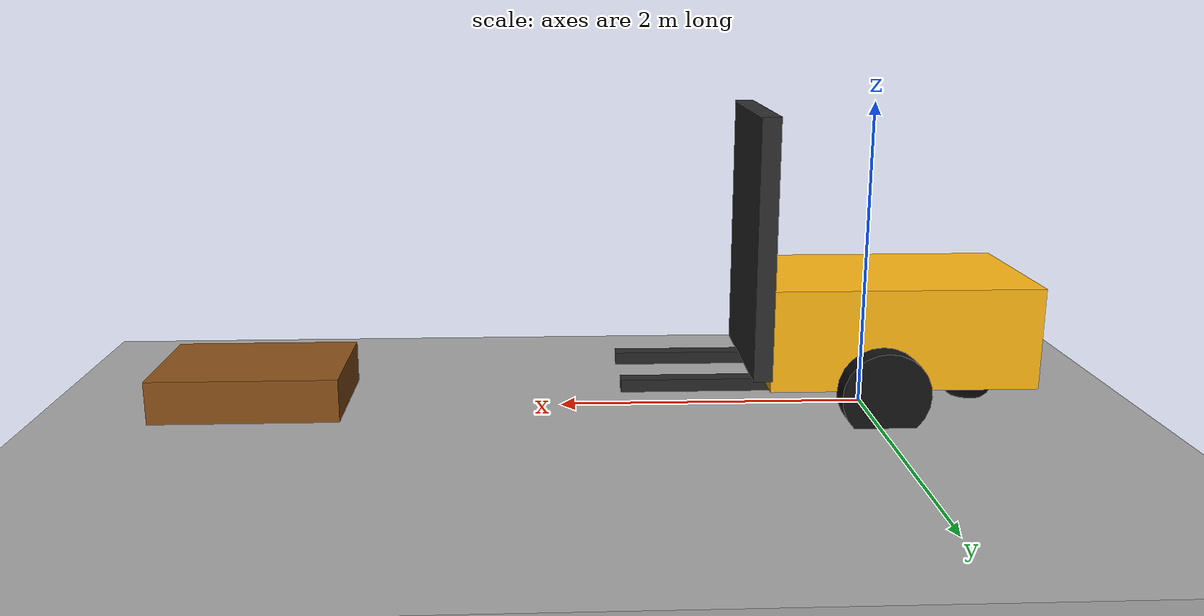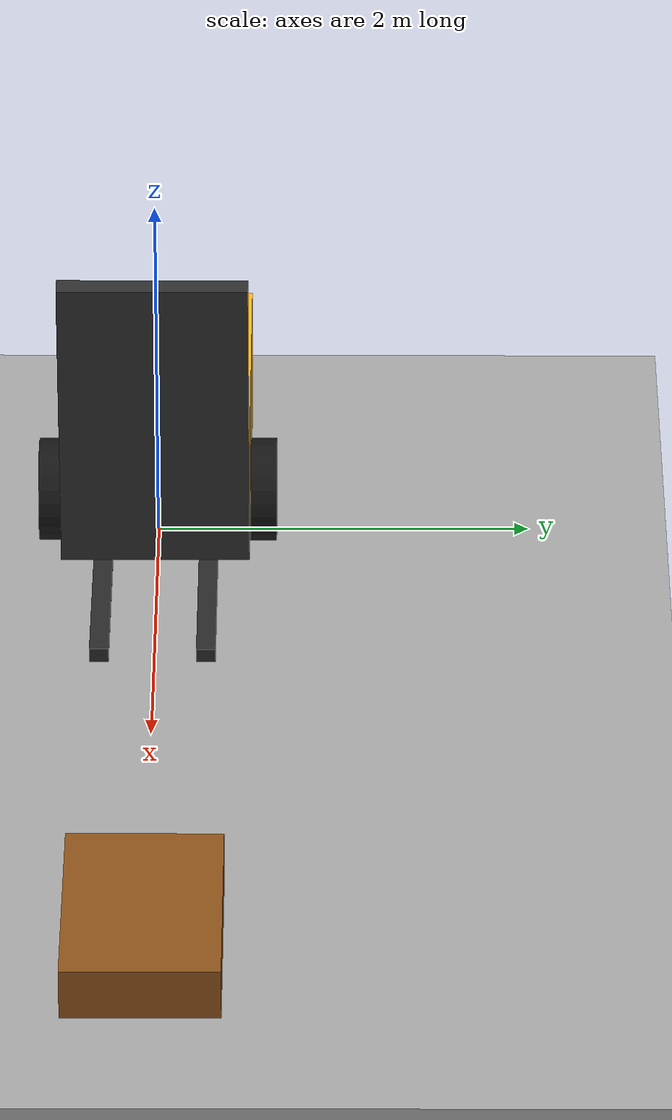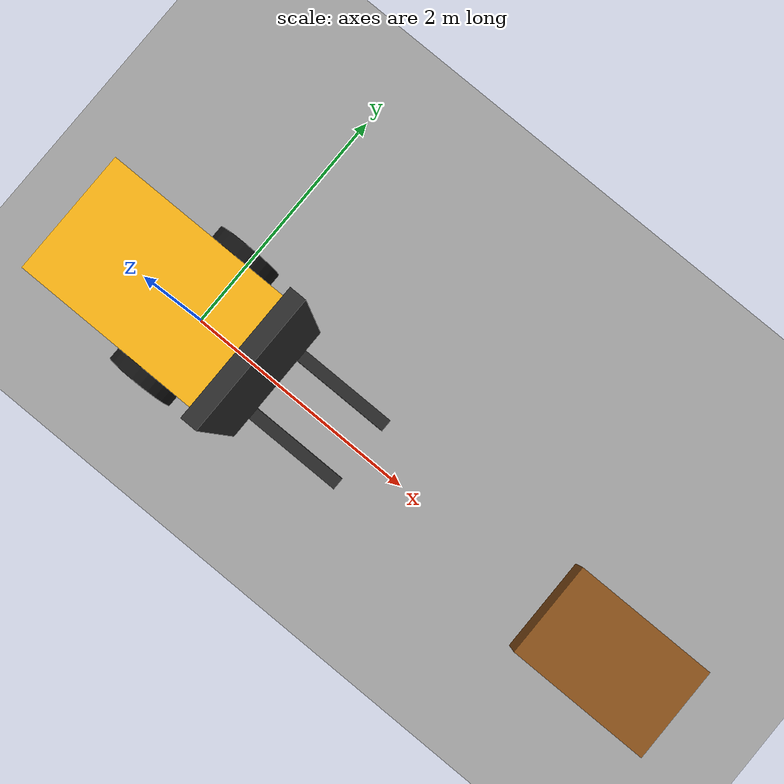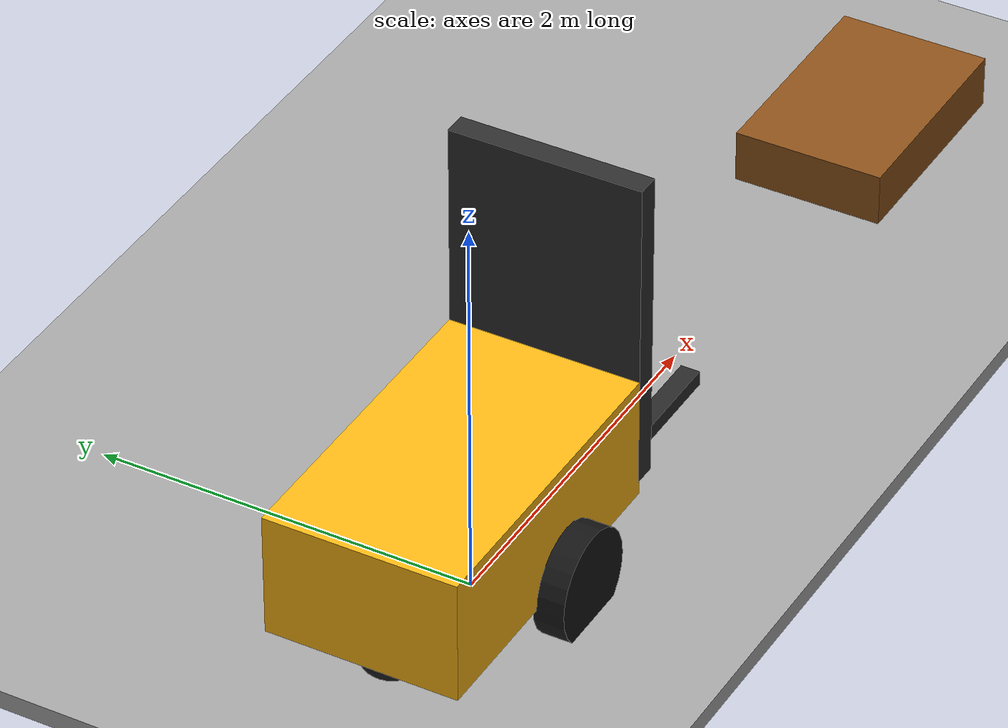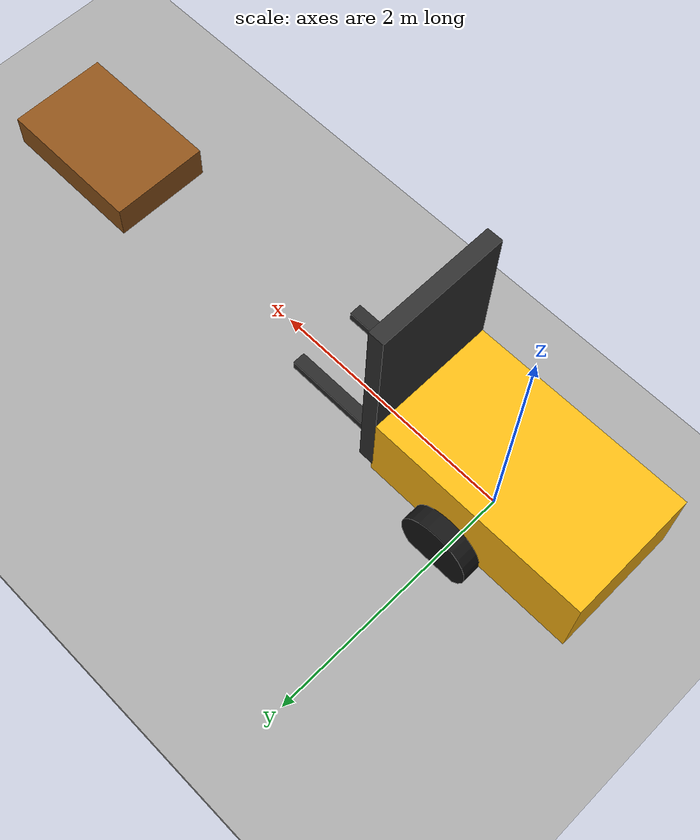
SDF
<?xml version="1.0"?>
<sdf version="1.10">
  <world name="default">
    <gravity>0 0 -9.81</gravity>

    <plugin filename="gz-sim-physics-system" name="gz::sim::systems::Physics"/>
    <plugin filename="gz-sim-user-commands-system" name="gz::sim::systems::UserCommands"/>
    <plugin filename="gz-sim-scene-broadcaster-system" name="gz::sim::systems::SceneBroadcaster"/>
    <plugin filename="gz-sim-sensors-system" name="gz::sim::systems::Sensors">
      <render_engine>ogre2</render_engine>
    </plugin>

    <light type="directional" name="sun">
      <cast_shadows>true</cast_shadows>
      <pose>0 0 10 0 0 0</pose>
      <diffuse>0.9 0.9 0.9 1</diffuse>
      <specular>0.2 0.2 0.2 1</specular>
      <direction>-0.5 0.3 -1</direction>
    </light>

    <model name="ground">
      <static>true</static>
      <link name="ground_link">
        <collision name="collision">
          <geometry><box><size>30 20 0.1</size></box></geometry>
        </collision>
        <visual name="visual">
          <geometry><box><size>30 20 0.1</size></box></geometry>
          <material><ambient>0.55 0.55 0.55 1</ambient><diffuse>0.65 0.65 0.65 1</diffuse></material>
        </visual>
      </link>
    </model>

    <model name="pallet_A">
      <pose>4 0 0.18 0 0 0</pose>
      <link name="pallet_link">
        <inertial><mass>30</mass><inertia><ixx>1.5</ixx><iyy>2.4</iyy><izz>3.0</izz></inertia></inertial>
        <collision name="collision"><geometry><box><size>1.2 0.8 0.3</size></box></geometry></collision>
        <visual name="visual"><geometry><box><size>1.2 0.8 0.3</size></box></geometry><material><ambient>0.45 0.24 0.08 1</ambient><diffuse>0.55 0.32 0.10 1</diffuse></material></visual>
      </link>
    </model>

    <model name="forklift">
      <pose>0 0 0.42 0 0 0</pose>

      <link name="base_link">
        <inertial>
          <mass>350</mass>
          <inertia><ixx>70</ixx><iyy>110</iyy><izz>130</izz></inertia>
        </inertial>
        <collision name="body_collision"><pose>-0.15 0 0.15 0 0 0</pose><geometry><box><size>1.7 1.0 0.65</size></box></geometry></collision>
        <visual name="body_visual"><pose>-0.15 0 0.15 0 0 0</pose><geometry><box><size>1.7 1.0 0.65</size></box></geometry><material><ambient>0.95 0.65 0.05 1</ambient><diffuse>1.0 0.72 0.08 1</diffuse></material></visual>
        <visual name="mast_visual"><pose>0.75 0 0.72 0 0 0</pose><geometry><box><size>0.12 1.0 1.65</size></box></geometry><material><ambient>0.18 0.18 0.18 1</ambient></material></visual>
        <visual name="fork_left"><pose>1.15 0.28 -0.18 0 0 0</pose><geometry><box><size>0.95 0.10 0.08</size></box></geometry><material><ambient>0.16 0.16 0.16 1</ambient></material></visual>
        <visual name="fork_right"><pose>1.15 -0.28 -0.18 0 0 0</pose><geometry><box><size>0.95 0.10 0.08</size></box></geometry><material><ambient>0.16 0.16 0.16 1</ambient></material></visual>
      </link>

      <link name="left_wheel">
        <pose>0 0.56 -0.17 1.570796 0 0</pose>
        <inertial><mass>18</mass><inertia><ixx>0.6</ixx><iyy>0.6</iyy><izz>0.9</izz></inertia></inertial>
        <collision name="collision"><geometry><cylinder><radius>0.28</radius><length>0.16</length></cylinder></geometry></collision>
        <visual name="visual"><geometry><cylinder><radius>0.28</radius><length>0.16</length></cylinder></geometry><material><ambient>0.08 0.08 0.08 1</ambient></material></visual>
      </link>

      <link name="right_wheel">
        <pose>0 -0.56 -0.17 1.570796 0 0</pose>
        <inertial><mass>18</mass><inertia><ixx>0.6</ixx><iyy>0.6</iyy><izz>0.9</izz></inertia></inertial>
        <collision name="collision"><geometry><cylinder><radius>0.28</radius><length>0.16</length></cylinder></geometry></collision>
        <visual name="visual"><geometry><cylinder><radius>0.28</radius><length>0.16</length></cylinder></geometry><material><ambient>0.08 0.08 0.08 1</ambient></material></visual>
      </link>

      <link name="rear_caster">
        <pose>-0.72 0 -0.24 0 0 0</pose>
        <inertial><mass>8</mass><inertia><ixx>0.15</ixx><iyy>0.15</iyy><izz>0.15</izz></inertia></inertial>
        <collision name="collision"><geometry><sphere><radius>0.18</radius></sphere></geometry></collision>
        <visual name="visual"><geometry><sphere><radius>0.18</radius></sphere></geometry><material><ambient>0.08 0.08 0.08 1</ambient></material></visual>
      </link>

      <joint name="left_wheel_joint" type="revolute">
        <parent>base_link</parent><child>left_wheel</child><axis><xyz>0 1 0</xyz></axis>
      </joint>
      <joint name="right_wheel_joint" type="revolute">
        <parent>base_link</parent><child>right_wheel</child><axis><xyz>0 1 0</xyz></axis>
      </joint>
      <joint name="rear_caster_joint" type="ball"><parent>base_link</parent><child>rear_caster</child></joint>

      <link name="sensor_link">
        <pose>0.45 0 0.75 0 0 0</pose>
        <inertial><mass>0.1</mass><inertia><ixx>0.001</ixx><iyy>0.001</iyy><izz>0.001</izz></inertia></inertial>
        <sensor name="front_camera" type="camera">
          <topic>/camera</topic><update_rate>15</update_rate>
          <camera><horizontal_fov>1.25</horizontal_fov><image><width>640</width><height>360</height><format>R8G8B8</format></image><clip><near>0.1</near><far>20</far></clip></camera>
        </sensor>
        <sensor name="front_lidar" type="gpu_lidar">
          <topic>/scan</topic><update_rate>10</update_rate>
          <lidar><scan><horizontal><samples>360</samples><resolution>1</resolution><min_angle>-1.5708</min_angle><max_angle>1.5708</max_angle></horizontal></scan><range><min>0.12</min><max>15</max><resolution>0.02</resolution></range></lidar>
        </sensor>
      </link>
      <joint name="sensor_joint" type="fixed"><parent>base_link</parent><child>sensor_link</child></joint>

      <plugin filename="gz-sim-diff-drive-system" name="gz::sim::systems::DiffDrive">
        <left_joint>left_wheel_joint</left_joint>
        <right_joint>right_wheel_joint</right_joint>
        <wheel_separation>1.12</wheel_separation>
        <wheel_radius>0.28</wheel_radius>
        <topic>/cmd_vel</topic>
        <odom_topic>/odom</odom_topic>
        <frame_id>odom</frame_id>
        <child_frame_id>base_link</child_frame_id>
        <odom_publish_frequency>30</odom_publish_frequency>
      </plugin>
    </model>
  </world>
</sdf>
